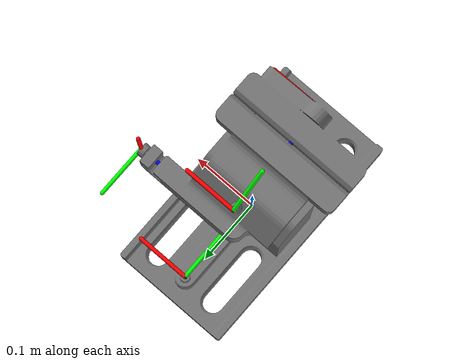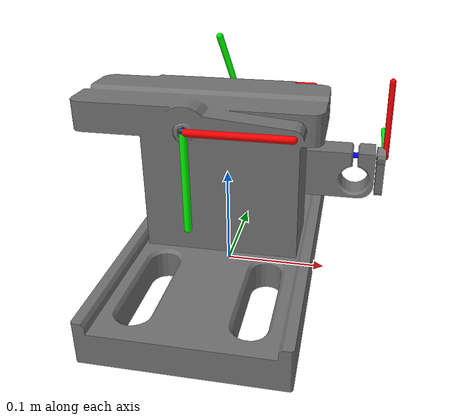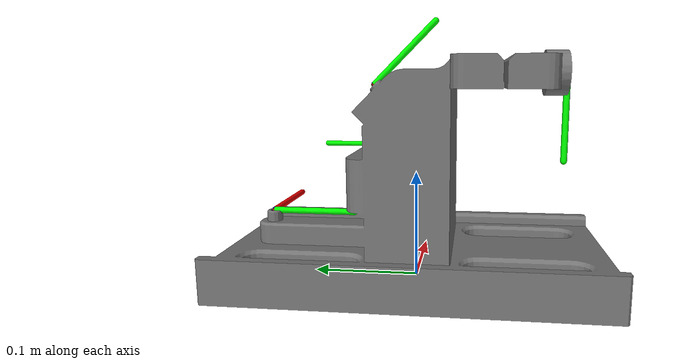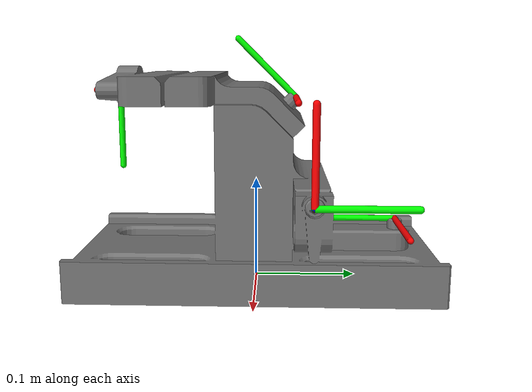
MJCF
<mujoco model="small_tool">
  <compiler angle="radian"/>
  <option timestep="0.01"/>

  <visual>
    <headlight diffuse="0.6 0.6 0.6" ambient="0.1 0.1 0.1" specular="0 0 0"/>
    <rgba haze="0.15 0.25 0.35 1"/>
    <global azimuth="120" elevation="-20"/>
  </visual>

  <asset>
    <mesh name="table_grip_mesh" file="table_grip.obj"/>
  </asset>

  <default>
    <geom condim="3" friction="1 0.5 0.01" solref="0.02 1" solimp="0.9 0.95 0.001"/>
  </default>

  <worldbody>
    <body name="table_grip" pos="0 0 0">

      <geom type="mesh" mesh="table_grip_mesh" rgba="0.45 0.45 0.45 1" contype="0" conaffinity="0" group="0"/>

      <!-- Base plate -->
      <geom name="base_plate" type="box" size="0.09 0.175 0.02" pos="0 0 0.02" rgba="0.8 0.2 0.2 1" contype="1" conaffinity="1" group="3"/>

      <!-- Central support -->
      <geom name="central_support" type="box" size="0.075 0.035 0.055" pos="0 0 0.095" rgba="0.2 0.8 0.2 1" contype="1" conaffinity="1" group="3"/>

      <!-- Lateral support -->
      <geom name="lateral_support" type="box" size="0.0925 0.015 0.0325" pos="0.0525 0.05 0.0825" rgba="0.2 0.2 0.8 1" contype="1" conaffinity="1" group="3"/>

      <!-- Upper support -->
      <geom name="upper_support" type="box" size="0.1 0.066 0.0275" pos="0 -0.049 0.1775" rgba="0.7 0.7 0.0 1" contype="1" conaffinity="1" group="3"/>

      <!-- Definition of the sites -->
      <!-- center of the piece -->
      <site name="mount_plate_site" pos="0.0 0.0 0.0" size="0.005" rgba="1 0 0 1"/>

      <!-- Hole 1 -->
      <body name="hole_1_frame_body" pos="0 0.14 0.06" quat="0 1 0 0">
        <geom type="capsule" fromto="0 0 0 0.08 0 0" rgba="1 0 0 1" size="0.003" contype="0" conaffinity="0"/>
        <geom type="capsule" fromto="0 0 0 0 0.08 0" rgba="0 1 0 1" size="0.003" contype="0" conaffinity="0"/>
        <geom type="capsule" fromto="0 0 0 0 0 0.08" rgba="0 0 1 1" size="0.003" contype="0" conaffinity="0"/>
      </body>

      <!-- Hole 2 -->
      <body name="hole_2_frame_body" pos="0.155 0.05 0.107" quat="0.7071 0 -0.7071 0">
        <geom type="capsule" fromto="0 0 0 0.08 0 0" rgba="1 0 0 1" size="0.003" contype="0" conaffinity="0"/>
        <geom type="capsule" fromto="0 0 0 0 0.08 0" rgba="0 1 0 1" size="0.003" contype="0" conaffinity="0"/>
        <geom type="capsule" fromto="0 0 0 0 0 0.08" rgba="0 0 1 1" size="0.003" contype="0" conaffinity="0"/>
      </body>

      <!-- Hole 3 -->
      <body name="hole_3_frame_body" pos="0.0 0.039 0.182" quat="0.38268 0.9239 0 0">
        <geom type="capsule" fromto="0 0 0 0.08 0 0" rgba="1 0 0 1" size="0.003" contype="0" conaffinity="0"/>
        <geom type="capsule" fromto="0 0 0 0 0.08 0" rgba="0 1 0 1" size="0.003" contype="0" conaffinity="0"/>
        <geom type="capsule" fromto="0 0 0 0 0 0.08" rgba="0 0 1 1" size="0.003" contype="0" conaffinity="0"/>
      </body>

      <!-- Hole 4 -->
      <body name="hole_4_frame_body" pos="0.0 -0.135 0.193" quat="0.7071 -0.7071 0 0">
        <geom type="capsule" fromto="0 0 0 0.08 0 0" rgba="1 0 0 1" size="0.003" contype="0" conaffinity="0"/>
        <geom type="capsule" fromto="0 0 0 0 0.08 0" rgba="0 1 0 1" size="0.003" contype="0" conaffinity="0"/>
        <geom type="capsule" fromto="0 0 0 0 0 0.08" rgba="0 0 1 1" size="0.003" contype="0" conaffinity="0"/>
      </body>

    </body>
  </worldbody>
</mujoco>
